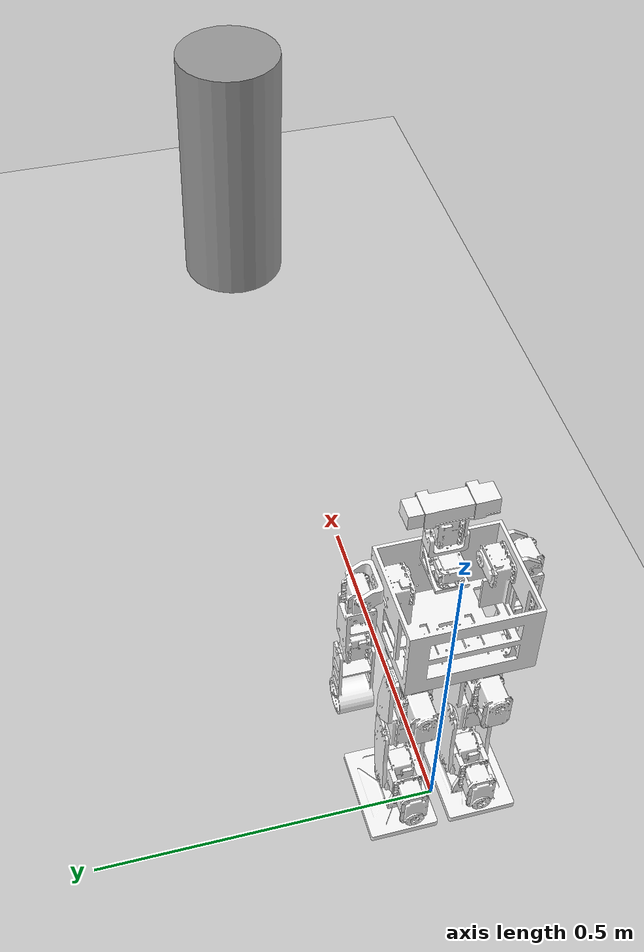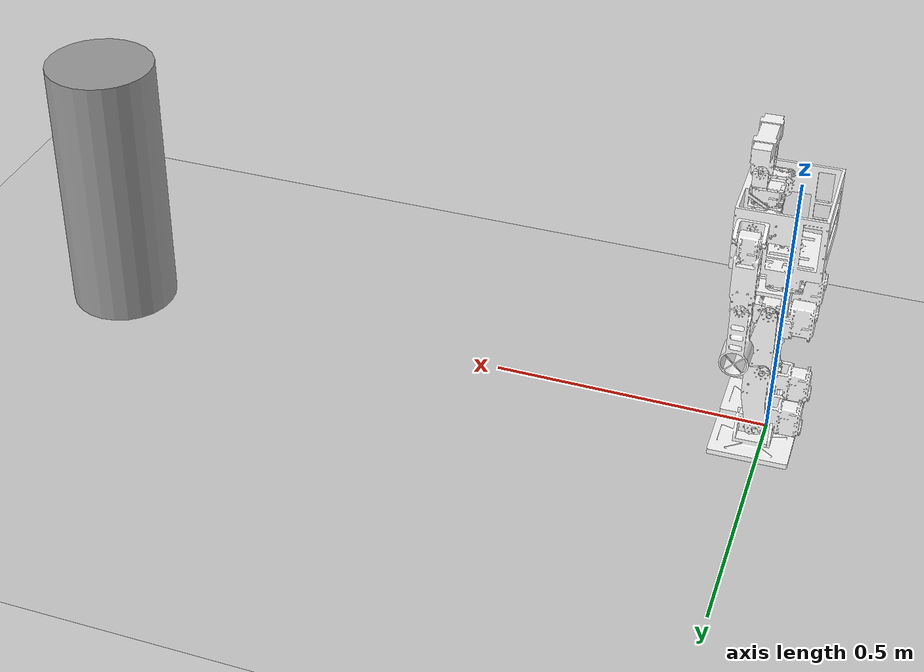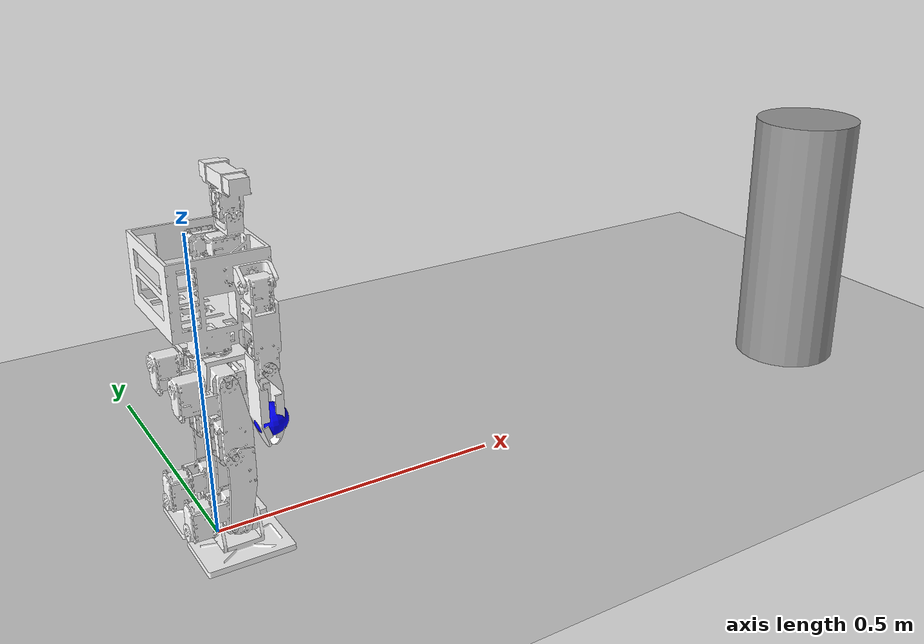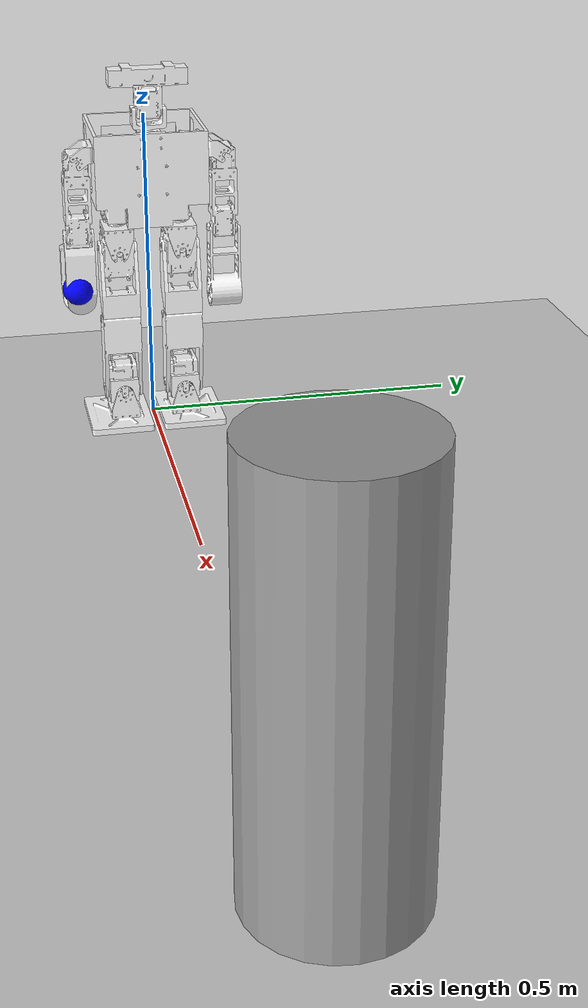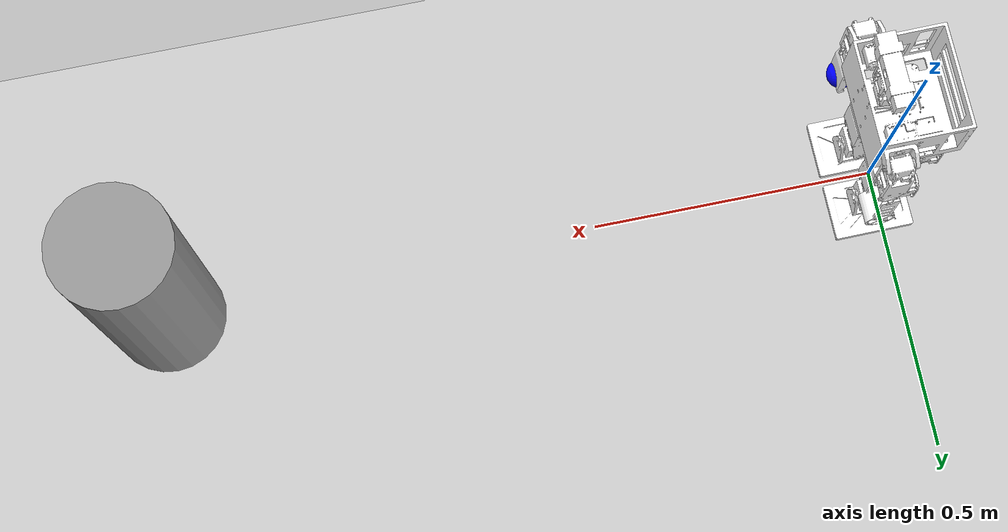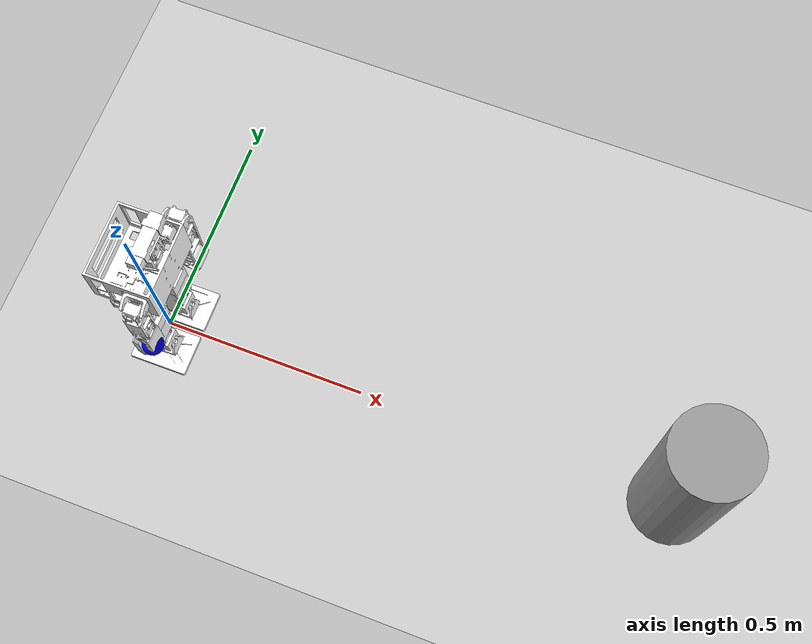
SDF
<sdf version="1.7">
 <world name="src_whole_world">
  <physics name="default_physics" default="0" type="ode">
   <max_step_size>0.001</max_step_size>
   <real_time_factor>1</real_time_factor>
   <real_time_update_rate>1000</real_time_update_rate>
   <ode>
    <solver>
     <type>quick</type>
     <iters>100</iters>
     <sor>1</sor>
     <use_dynamic_moi_rescaling>0</use_dynamic_moi_rescaling>
    </solver>
    <constraints>
     <cfm>0</cfm>
     <erp>0.2</erp>
     <contact_max_correcting_vel>100</contact_max_correcting_vel>
     <contact_surface_layer>0.001</contact_surface_layer>
    </constraints>
    <friction><mu>0.5</mu><mu2>0.1</mu2><fdir1>1 0 0</fdir1></friction>
   </ode>
  </physics>
  <model name="ground_plane">
   <static>1</static>
   <link name="link">
    <collision name="collision">
     <geometry><plane><normal>0 0 1</normal><size>100 100</size></plane></geometry>
     <surface>
      <contact><collide_bitmask>65535</collide_bitmask></contact>
      <friction><ode><mu>100</mu><mu2>50</mu2></ode></friction>
     </surface>
    </collision>
    <visual name="visual">
     <cast_shadows>0</cast_shadows>
     <geometry><plane><normal>0 0 1</normal><size>100 100</size></plane></geometry>
     <material>
      <script><uri>file://media/materials/scripts/gazebo.material</uri><name>Gazebo/Grey</name></script>
     </material>
    </visual>
   </link>
  </model>
  <light name="sun" type="directional">
   <pose>0 0 10 0 -0 0</pose>
   <diffuse>0.8 0.8 0.8 1</diffuse>
   <specular>0.2 0.2 0.2 1</specular>
   <attenuation>
    <range>1000</range>
    <constant>0.9</constant>
    <linear>0.01</linear>
    <quadratic>0.001</quadratic>
   </attenuation>
   <direction>-0.5 0.1 -0.9</direction>
   <spot><inner_angle>0</inner_angle><outer_angle>0</outer_angle><falloff>0</falloff></spot>
  </light>
  <model name="src_whole">
   <link name="base_link">
    <inertial>
     <pose>-0.00166 -4e-06 -0.004178 0 -0 0</pose>
     <mass>0.75139</mass>
     <inertia>
      <ixx>0.0010428</ixx>
      <ixy>-5.7481e-07</ixy>
      <ixz>1.2257e-05</ixz>
      <iyy>0.00092792</iyy>
      <iyz>1.0592e-07</iyz>
      <izz>0.0012549</izz>
     </inertia>
    </inertial>
    <collision name="base_link_collision">
     <geometry><mesh><scale>1 1 1</scale><uri>model://src_whole/meshes/base_link.STL</uri></mesh></geometry>
    </collision>
    <visual name="base_link_visual">
     <geometry><mesh><scale>1 1 1</scale><uri>model://src_whole/meshes/base_link.STL</uri></mesh></geometry>
     <material>
      <ambient>0 0 0 1</ambient>
      <diffuse>1 1 1 1</diffuse>
      <emissive>0 0 0 1</emissive>
      <specular>0 0 0 0</specular>
     </material>
    </visual>
    <sensor name="IMU" type="imu">
     <pose relative_to="base_link">-0 -0 0 0 -0 0</pose>
     <imu>
      <angular_velocity>
       <x><noise type="none"/></x>
       <y><noise type="none"/></y>
       <z><noise type="none"/></z>
      </angular_velocity>
      <linear_acceleration>
       <x><noise type="none"/></x>
       <y><noise type="none"/></y>
       <z><noise type="none"/></z>
      </linear_acceleration>
     </imu>
     <always_on>1</always_on>
     <update_rate>1000</update_rate>
     <visualize>1</visualize>
    </sensor>
    <sensor name="camera1" type="camera">
     <pose relative_to="base_link">-0 -0 0.1 0 -0 0</pose>
     <update_rate>30</update_rate>
     <camera name="head">
      <horizontal_fov>1.39626</horizontal_fov>
      <image><width>1920</width><height>1080</height><format>R8G8B8</format></image>
      <clip><near>0.02</near><far>300</far></clip>
      <noise><type>gaussian</type><mean>0</mean><stddev>0.007</stddev></noise>
     </camera>
     <plugin name="camera_controller" filename="libgazebo_ros_camera.so">
      <alwaysOn>1</alwaysOn>
      <updateRate>0.0</updateRate>
      <cameraName>kubot_cam</cameraName>
      <imageTopicName>image_raw</imageTopicName>
      <cameraInfoTopicName>camera_info</cameraInfoTopicName>
      <frameName>camera_link</frameName>
      <hackBaseline>0.07</hackBaseline>
      <distortionK1>0.0</distortionK1>
      <distortionK2>0.0</distortionK2>
      <distortionK3>0.0</distortionK3>
      <distortionT1>0.0</distortionT1>
      <distortionT2>0.0</distortionT2>
     </plugin>
    </sensor>
   </link>
   <joint name="LP" type="revolute">
    <pose relative_to="base_link">-0.008588 0.050058 -0.11568 0 -0 0</pose>
    <parent>base_link</parent>
    <child>LP_Link</child>
    <axis>
     <xyz>0 0 1</xyz>
     <limit><effort>-1</effort><velocity>-1</velocity><lower>-1e+16</lower><upper>1e+16</upper></limit>
     <dynamics><spring_reference>0</spring_reference><spring_stiffness>0</spring_stiffness></dynamics>
    </axis>
   </joint>
   <link name="LP_Link">
    <pose relative_to="LP">0 0 0 0 -0 0</pose>
    <inertial>
     <pose>0.003884 -0 0.027759 0 -0 0</pose>
     <mass>0.032185</mass>
     <inertia>
      <ixx>8.1509e-06</ixx>
      <ixy>-3.4128e-22</ixy>
      <ixz>2.5914e-09</ixz>
      <iyy>6.7466e-06</iyy>
      <iyz>2.4212e-11</iyz>
      <izz>9.2429e-06</izz>
     </inertia>
    </inertial>
    <collision name="LP_Link_collision">
     <geometry><mesh><scale>1 1 1</scale><uri>model://src_whole/meshes/LP_Link.STL</uri></mesh></geometry>
    </collision>
    <visual name="LP_Link_visual">
     <geometry><mesh><scale>1 1 1</scale><uri>model://src_whole/meshes/LP_Link.STL</uri></mesh></geometry>
     <material>
      <ambient>0 0 0 1</ambient>
      <diffuse>1 1 1 1</diffuse>
      <emissive>0 0 0 1</emissive>
      <specular>0 0 0 0</specular>
     </material>
    </visual>
   </link>
   <joint name="LPm" type="revolute">
    <pose relative_to="LP_Link">0 0 0 0 -0 0</pose>
    <parent>LP_Link</parent>
    <child>LPm_Link</child>
    <axis>
     <xyz>1 0 0</xyz>
     <limit><effort>-1</effort><velocity>-1</velocity><lower>-1e+16</lower><upper>1e+16</upper></limit>
     <dynamics><spring_reference>0</spring_reference><spring_stiffness>0</spring_stiffness></dynamics>
    </axis>
   </joint>
   <link name="LPm_Link">
    <pose relative_to="LPm">0 0 0 0 -0 0</pose>
    <inertial>
     <pose>-0.019927 2.6e-05 -0.014808 0 -0 0</pose>
     <mass>0.186247</mass>
     <inertia>
      <ixx>7.32062e-05</ixx>
      <ixy>2.13049e-09</ixy>
      <ixz>-8.42502e-07</ixz>
      <iyy>6.58557e-05</iyy>
      <iyz>3.60642e-07</iyz>
      <izz>4.46475e-05</izz>
     </inertia>
    </inertial>
    <collision name="LPm_Link_collision">
     <geometry><mesh><scale>1 1 1</scale><uri>model://src_whole/meshes/LPm_Link.STL</uri></mesh></geometry>
    </collision>
    <visual name="LPm_Link_visual">
     <geometry><mesh><scale>1 1 1</scale><uri>model://src_whole/meshes/LPm_Link.STL</uri></mesh></geometry>
     <material>
      <ambient>0 0 0 1</ambient>
      <diffuse>1 1 1 1</diffuse>
      <emissive>0 0 0 1</emissive>
      <specular>0 0 0 0</specular>
     </material>
    </visual>
   </link>
   <joint name="LPd" type="revolute">
    <pose relative_to="LPm_Link">0 0 0 0 -0 0</pose>
    <parent>LPm_Link</parent>
    <child>LPd_Link</child>
    <axis>
     <xyz>0 1 0</xyz>
     <limit><effort>-1</effort><velocity>-1</velocity><lower>-1e+16</lower><upper>1e+16</upper></limit>
     <dynamics><spring_reference>0</spring_reference><spring_stiffness>0</spring_stiffness></dynamics>
    </axis>
   </joint>
   <link name="LPd_Link">
    <pose relative_to="LPd">0 0 0 0 -0 0</pose>
    <inertial>
     <pose>0.005229 -3.2e-05 -0.087344 0 -0 0</pose>
     <mass>0.155158</mass>
     <inertia>
      <ixx>8.67547e-05</ixx>
      <ixy>-2.14541e-09</ixy>
      <ixz>6.57999e-06</ixz>
      <iyy>7.92367e-05</iyy>
      <iyz>3.60637e-07</iyz>
      <izz>3.77122e-05</izz>
     </inertia>
    </inertial>
    <collision name="LPd_Link_collision">
     <geometry><mesh><scale>1 1 1</scale><uri>model://src_whole/meshes/LPd_Link.STL</uri></mesh></geometry>
    </collision>
    <visual name="LPd_Link_visual">
     <geometry><mesh><scale>1 1 1</scale><uri>model://src_whole/meshes/LPd_Link.STL</uri></mesh></geometry>
     <material>
      <ambient>0 0 0 1</ambient>
      <diffuse>1 1 1 1</diffuse>
      <emissive>0 0 0 1</emissive>
      <specular>0 0 0 0</specular>
     </material>
    </visual>
   </link>
   <joint name="LK" type="revolute">
    <pose relative_to="LPd_Link">0.0008 0 -0.12 0 -0 0</pose>
    <parent>LPd_Link</parent>
    <child>LK_Link</child>
    <axis>
     <xyz>0 1 0</xyz>
     <limit><effort>-1</effort><velocity>-1</velocity><lower>-1e+16</lower><upper>1e+16</upper></limit>
     <dynamics><spring_reference>0</spring_reference><spring_stiffness>0</spring_stiffness></dynamics>
    </axis>
   </joint>
   <link name="LK_Link">
    <pose relative_to="LK">0 0 0 0 -0 0</pose>
    <inertial>
     <pose>0.011128 0 -0.046701 0 -0 0</pose>
     <mass>0.0766833</mass>
     <inertia>
      <ixx>8.13835e-05</ixx>
      <ixy>-5.37539e-13</ixy>
      <ixz>-6.82632e-06</ixz>
      <iyy>8.60267e-05</iyy>
      <iyz>-1.57628e-12</iyz>
      <izz>1.26229e-05</izz>
     </inertia>
    </inertial>
    <collision name="LK_Link_collision">
     <geometry><mesh><scale>1 1 1</scale><uri>model://src_whole/meshes/LK_Link.STL</uri></mesh></geometry>
    </collision>
    <visual name="LK_Link_visual">
     <geometry><mesh><scale>1 1 1</scale><uri>model://src_whole/meshes/LK_Link.STL</uri></mesh></geometry>
     <material>
      <ambient>0 0 0 1</ambient>
      <diffuse>1 1 1 1</diffuse>
      <emissive>0 0 0 1</emissive>
      <specular>0 0 0 0</specular>
     </material>
    </visual>
   </link>
   <joint name="LAP" type="revolute">
    <pose relative_to="LK_Link">-0.000796 0 -0.12 0 -0 0</pose>
    <parent>LK_Link</parent>
    <child>LAP_Link</child>
    <axis>
     <xyz>0 1 0</xyz>
     <limit><effort>-1</effort><velocity>-1</velocity><lower>-1e+16</lower><upper>1e+16</upper></limit>
     <dynamics><spring_reference>0</spring_reference><spring_stiffness>0</spring_stiffness></dynamics>
    </axis>
   </joint>
   <link name="LAP_Link">
    <pose relative_to="LAP">0 0 0 0 -0 0</pose>
    <inertial>
     <pose>-0.019927 -3.5e-05 0.014808 0 -0 0</pose>
     <mass>0.186247</mass>
     <inertia>
      <ixx>7.32062e-05</ixx>
      <ixy>-2.13055e-09</ixy>
      <ixz>8.42502e-07</ixz>
      <iyy>6.58557e-05</iyy>
      <iyz>3.60642e-07</iyz>
      <izz>4.46475e-05</izz>
     </inertia>
    </inertial>
    <collision name="LAP_Link_collision">
     <geometry><mesh><scale>1 1 1</scale><uri>model://src_whole/meshes/LAP_Link.STL</uri></mesh></geometry>
    </collision>
    <visual name="LAP_Link_visual">
     <geometry><mesh><scale>1 1 1</scale><uri>model://src_whole/meshes/LAP_Link.STL</uri></mesh></geometry>
     <material>
      <ambient>0 0 0 1</ambient>
      <diffuse>1 1 1 1</diffuse>
      <emissive>0 0 0 1</emissive>
      <specular>0 0 0 0</specular>
     </material>
    </visual>
   </link>
   <joint name="LAR" type="revolute">
    <pose relative_to="LAP_Link">0 0 0 0 -0 0</pose>
    <parent>LAP_Link</parent>
    <child>LAR_Link</child>
    <axis>
     <xyz>1 0 0</xyz>
     <limit><effort>-1</effort><velocity>-1</velocity><lower>-1e+16</lower><upper>1e+16</upper></limit>
     <dynamics><spring_reference>0</spring_reference><spring_stiffness>0</spring_stiffness></dynamics>
    </axis>
   </joint>
   <link name="LAR_Link">
    <pose relative_to="LAR">0 0 0 0 -0 0</pose>
    <inertial>
     <pose>-0.0266 0 -0.019713 0 -0 0</pose>
     <mass>0.00840381</mass>
     <inertia>
      <ixx>2.59254e-06</ixx>
      <ixy>-2.03595e-22</ixy>
      <ixz>1.87535e-22</ixz>
      <iyy>1.39862e-06</iyy>
      <iyz>-1.2106e-11</iyz>
      <izz>1.22894e-06</izz>
     </inertia>
    </inertial>
    <collision name="LAR_Link_collision">
     <geometry><mesh><scale>1 1 1</scale><uri>model://src_whole/meshes/LAR_Link.STL</uri></mesh></geometry>
    </collision>
    <visual name="LAR_Link_visual">
     <geometry><mesh><scale>1 1 1</scale><uri>model://src_whole/meshes/LAR_Link.STL</uri></mesh></geometry>
     <material>
      <ambient>0 0 0 1</ambient>
      <diffuse>1 1 1 1</diffuse>
      <emissive>0 0 0 1</emissive>
      <specular>0 0 0 0</specular>
     </material>
    </visual>
   </link>
   <joint name="LS" type="fixed">
    <pose relative_to="LAR_Link">0.000796 0 -0.05 0 -0 0</pose>
    <parent>LAR_Link</parent>
    <child>LS_Link</child>
    <axis>
     <xyz>0 0 1</xyz>
     <limit><effort>-1</effort><velocity>-1</velocity><lower>-1e+16</lower><upper>1e+16</upper></limit>
     <dynamics><spring_reference>0</spring_reference><spring_stiffness>0</spring_stiffness></dynamics>
    </axis>
   </joint>
   <link name="LS_Link">
    <pose relative_to="LS">0 0 0 0 -0 0</pose>
    <inertial>
     <pose>0.004719 0.00669 0.007071 0 -0 0</pose>
     <mass>0.145083</mass>
     <inertia>
      <ixx>0.000115542</ixx>
      <ixy>3.6327e-13</ixy>
      <ixz>1.46992e-12</ixz>
      <iyy>0.000210297</iyy>
      <iyz>1.32916e-06</iyz>
      <izz>0.000318707</izz>
     </inertia>
    </inertial>
    <collision name="LS_Link_collision">
     <geometry><mesh><scale>1 1 1</scale><uri>model://src_whole/meshes/LS_Link.STL</uri></mesh></geometry>
     <surface><friction><ode><mu>0.2</mu><mu2>0.1</mu2></ode></friction></surface>
     <surface>
      <contact><ode><kp>1e+07</kp><kd>10000</kd><max_vel>0.1</max_vel><min_depth>0.001</min_depth></ode></contact>
     </surface>
    </collision>
    <visual name="LS_Link_visual">
     <geometry><mesh><scale>1 1 1</scale><uri>model://src_whole/meshes/LS_Link.STL</uri></mesh></geometry>
     <material>
      <ambient>0 0 0 1</ambient>
      <diffuse>1 1 1 1</diffuse>
      <emissive>0 0 0 1</emissive>
      <specular>0 0 0 0</specular>
     </material>
    </visual>
   </link>
   <joint name="LSHP" type="revolute">
    <pose relative_to="base_link">0.033212 0.088307 0.054616 0 -0 0</pose>
    <parent>base_link</parent>
    <child>LSHP_Link</child>
    <axis>
     <xyz>0 1 0</xyz>
     <limit><effort>-1</effort><velocity>-1</velocity><lower>-1e+16</lower><upper>1e+16</upper></limit>
     <dynamics><spring_reference>0</spring_reference><spring_stiffness>0</spring_stiffness></dynamics>
    </axis>
   </joint>
   <link name="LSHP_Link">
    <pose relative_to="LSHP">0 0 0 0 -0 0</pose>
    <inertial>
     <pose>-0 0.010248 -0.001638 0 -0 0</pose>
     <mass>0.0144695</mass>
     <inertia>
      <ixx>2.03926e-06</ixx>
      <ixy>-6.3955e-13</ixy>
      <ixz>8.85004e-14</ixz>
      <iyy>6.57717e-06</iyy>
      <iyz>2.36867e-07</iyz>
      <izz>6.75696e-06</izz>
     </inertia>
    </inertial>
    <collision name="LSHP_Link_collision">
     <geometry><mesh><scale>1 1 1</scale><uri>model://src_whole/meshes/LSHP_Link.STL</uri></mesh></geometry>
    </collision>
    <visual name="LSHP_Link_visual">
     <geometry><mesh><scale>1 1 1</scale><uri>model://src_whole/meshes/LSHP_Link.STL</uri></mesh></geometry>
     <material>
      <ambient>0 0 0 1</ambient>
      <diffuse>1 1 1 1</diffuse>
      <emissive>0 0 0 1</emissive>
      <specular>0 0 0 0</specular>
     </material>
    </visual>
   </link>
   <joint name="LSHR" type="revolute">
    <pose relative_to="LSHP_Link">0.020275 0.025656 -0.01045 0 -0 0</pose>
    <parent>LSHP_Link</parent>
    <child>LSHR_Link</child>
    <axis>
     <xyz>1 0 0</xyz>
     <limit><effort>-1</effort><velocity>-1</velocity><lower>-1e+16</lower><upper>1e+16</upper></limit>
     <dynamics><spring_reference>0</spring_reference><spring_stiffness>0</spring_stiffness></dynamics>
    </axis>
   </joint>
   <link name="LSHR_Link">
    <pose relative_to="LSHR">0 0 0 0 -0 0</pose>
    <inertial>
     <pose>-0.02074 1e-05 -0.061219 0 -0 0</pose>
     <mass>0.123124</mass>
     <inertia>
      <ixx>4.41336e-05</ixx>
      <ixy>1.41885e-10</ixy>
      <ixz>-1.13936e-07</ixz>
      <iyy>4.14051e-05</iyy>
      <iyz>1.08534e-07</iyz>
      <izz>2.93257e-05</izz>
     </inertia>
    </inertial>
    <collision name="LSHR_Link_collision">
     <geometry><mesh><scale>1 1 1</scale><uri>model://src_whole/meshes/LSHR_Link.STL</uri></mesh></geometry>
    </collision>
    <visual name="LSHR_Link_visual">
     <geometry><mesh><scale>1 1 1</scale><uri>model://src_whole/meshes/LSHR_Link.STL</uri></mesh></geometry>
     <material>
      <ambient>0 0 0 1</ambient>
      <diffuse>1 1 1 1</diffuse>
      <emissive>0 0 0 1</emissive>
      <specular>0 0 0 0</specular>
     </material>
    </visual>
   </link>
   <joint name="LE" type="revolute">
    <pose relative_to="LSHR_Link">-0.02075 0.02075 -0.1231 0 -0 0</pose>
    <parent>LSHR_Link</parent>
    <child>LE_Link</child>
    <axis>
     <xyz>0 1 0</xyz>
     <limit><effort>-1</effort><velocity>-1</velocity><lower>-1e+16</lower><upper>1e+16</upper></limit>
     <dynamics><spring_reference>0</spring_reference><spring_stiffness>0</spring_stiffness></dynamics>
    </axis>
   </joint>
   <link name="LE_Link">
    <pose relative_to="LE">0 0 0 0 -0 0</pose>
    <inertial>
     <pose>0 -0.020275 -0.07859 0 -0 0</pose>
     <mass>0.0479318</mass>
     <inertia>
      <ixx>7.80085e-05</ixx>
      <ixy>7.08556e-20</ixy>
      <ixz>1.5237e-19</ixz>
      <iyy>7.27678e-05</iyy>
      <iyz>1.80118e-12</iyz>
      <izz>2.17936e-05</izz>
     </inertia>
    </inertial>
    <collision name="LE_Link_collision">
     <geometry><mesh><scale>1 1 1</scale><uri>model://src_whole/meshes/LE_Link.STL</uri></mesh></geometry>
    </collision>
    <visual name="LE_Link_visual">
     <geometry><mesh><scale>1 1 1</scale><uri>model://src_whole/meshes/LE_Link.STL</uri></mesh></geometry>
     <material>
      <ambient>0 0 0 1</ambient>
      <diffuse>1 1 1 1</diffuse>
      <emissive>0 0 0 1</emissive>
      <specular>0 0 0 0</specular>
     </material>
    </visual>
   </link>
   <joint name="NY" type="revolute">
    <pose relative_to="base_link">0.038812 5.7e-05 0.086566 0 -0 0</pose>
    <parent>base_link</parent>
    <child>NY_Link</child>
    <axis>
     <xyz>0 0 1</xyz>
     <limit><effort>-1</effort><velocity>-1</velocity><lower>-1e+16</lower><upper>1e+16</upper></limit>
     <dynamics><spring_reference>0</spring_reference><spring_stiffness>0</spring_stiffness></dynamics>
    </axis>
   </joint>
   <link name="NY_Link">
    <pose relative_to="NY">0 0 0 0 -0 0</pose>
    <inertial>
     <pose>-0.008461 -1e-06 -0.011176 0 -0 0</pose>
     <mass>0.0588745</mass>
     <inertia>
      <ixx>1.41764e-05</ixx>
      <ixy>1.41875e-09</ixy>
      <ixz>-1.82756e-07</ixz>
      <iyy>1.41937e-05</iyy>
      <iyz>2.61312e-12</iyz>
      <izz>1.67049e-05</izz>
     </inertia>
    </inertial>
    <collision name="NY_Link_collision">
     <geometry><mesh><scale>1 1 1</scale><uri>model://src_whole/meshes/NY_Link.STL</uri></mesh></geometry>
    </collision>
    <visual name="NY_Link_visual">
     <geometry><mesh><scale>1 1 1</scale><uri>model://src_whole/meshes/NY_Link.STL</uri></mesh></geometry>
     <material>
      <ambient>0 0 0 1</ambient>
      <diffuse>1 1 1 1</diffuse>
      <emissive>0 0 0 1</emissive>
      <specular>0 0 0 0</specular>
     </material>
    </visual>
   </link>
   <joint name="NP" type="revolute">
    <pose relative_to="NY_Link">0 -0.020275 0.0295 0 -0 0</pose>
    <parent>NY_Link</parent>
    <child>NP_Link</child>
    <axis>
     <xyz>0 1 0</xyz>
     <limit><effort>-1</effort><velocity>-1</velocity><lower>-1e+16</lower><upper>1e+16</upper></limit>
     <dynamics><spring_reference>0</spring_reference><spring_stiffness>0</spring_stiffness></dynamics>
    </axis>
   </joint>
   <link name="NP_Link">
    <pose relative_to="NP">0 0 0 0 -0 0</pose>
    <inertial>
     <pose>-0.000876 0.019782 0.038502 0 -0 0</pose>
     <mass>0.140816</mass>
     <inertia>
      <ixx>0.0001309</ixx>
      <ixy>-3.21261e-07</ixy>
      <ixz>1.07462e-07</ixz>
      <iyy>2.57793e-05</iyy>
      <iyz>-5.11712e-07</iyz>
      <izz>0.000128105</izz>
     </inertia>
    </inertial>
    <collision name="NP_Link_collision">
     <geometry><mesh><scale>1 1 1</scale><uri>model://src_whole/meshes/NP_Link.STL</uri></mesh></geometry>
    </collision>
    <visual name="NP_Link_visual">
     <geometry><mesh><scale>1 1 1</scale><uri>model://src_whole/meshes/NP_Link.STL</uri></mesh></geometry>
     <material>
      <ambient>0 0 0 1</ambient>
      <diffuse>1 1 1 1</diffuse>
      <emissive>0 0 0 1</emissive>
      <specular>0 0 0 0</specular>
     </material>
    </visual>
   </link>
   <joint name="RP" type="revolute">
    <pose relative_to="base_link">-0.008588 -0.049942 -0.11568 0 -0 0</pose>
    <parent>base_link</parent>
    <child>RP_link</child>
    <axis>
     <xyz>0 0 1</xyz>
     <limit><effort>-1</effort><velocity>-1</velocity><lower>-1e+16</lower><upper>1e+16</upper></limit>
     <dynamics><spring_reference>0</spring_reference><spring_stiffness>0</spring_stiffness></dynamics>
    </axis>
   </joint>
   <link name="RP_link">
    <pose relative_to="RP">0 0 0 0 -0 0</pose>
    <inertial>
     <pose>0.003884 -0 0.027759 0 -0 0</pose>
     <mass>0.032185</mass>
     <inertia>
      <ixx>8.1509e-06</ixx>
      <ixy>2.6555e-22</ixy>
      <ixz>2.5914e-09</ixz>
      <iyy>6.7466e-06</iyy>
      <iyz>2.4212e-11</iyz>
      <izz>9.2429e-06</izz>
     </inertia>
    </inertial>
    <collision name="RP_link_collision">
     <geometry><mesh><scale>1 1 1</scale><uri>model://src_whole/meshes/RP_link.STL</uri></mesh></geometry>
    </collision>
    <visual name="RP_link_visual">
     <geometry><mesh><scale>1 1 1</scale><uri>model://src_whole/meshes/RP_link.STL</uri></mesh></geometry>
     <material>
      <ambient>0 0 0 1</ambient>
      <diffuse>1 1 1 1</diffuse>
      <emissive>0 0 0 1</emissive>
      <specular>0 0 0 0</specular>
     </material>
    </visual>
   </link>
   <joint name="RPm" type="revolute">
    <pose relative_to="RP_link">0 0 0 0 -0 0</pose>
    <parent>RP_link</parent>
    <child>RPm_Link</child>
    <axis>
     <xyz>1 0 0</xyz>
     <limit><effort>-1</effort><velocity>-1</velocity><lower>-1e+16</lower><upper>1e+16</upper></limit>
     <dynamics><spring_reference>0</spring_reference><spring_stiffness>0</spring_stiffness></dynamics>
    </axis>
   </joint>
   <link name="RPm_Link">
    <pose relative_to="RPm">0 0 0 0 -0 0</pose>
    <inertial>
     <pose>-0.019927 2.6e-05 -0.014808 0 -0 0</pose>
     <mass>0.18625</mass>
     <inertia>
      <ixx>7.3206e-05</ixx>
      <ixy>2.1305e-09</ixy>
      <ixz>-8.425e-07</ixz>
      <iyy>6.5856e-05</iyy>
      <iyz>3.6064e-07</iyz>
      <izz>4.4648e-05</izz>
     </inertia>
    </inertial>
    <collision name="RPm_Link_collision">
     <geometry><mesh><scale>1 1 1</scale><uri>model://src_whole/meshes/RPm_Link.STL</uri></mesh></geometry>
    </collision>
    <visual name="RPm_Link_visual">
     <geometry><mesh><scale>1 1 1</scale><uri>model://src_whole/meshes/RPm_Link.STL</uri></mesh></geometry>
     <material>
      <ambient>0 0 0 1</ambient>
      <diffuse>1 1 1 1</diffuse>
      <emissive>0 0 0 1</emissive>
      <specular>0 0 0 0</specular>
     </material>
    </visual>
   </link>
   <joint name="RPd" type="revolute">
    <pose relative_to="RPm_Link">0 0 0 0 -0 0</pose>
    <parent>RPm_Link</parent>
    <child>RPd_Link</child>
    <axis>
     <xyz>0 1 0</xyz>
     <limit><effort>-1</effort><velocity>-1</velocity><lower>-1e+16</lower><upper>1e+16</upper></limit>
     <dynamics><spring_reference>0</spring_reference><spring_stiffness>0</spring_stiffness></dynamics>
    </axis>
   </joint>
   <link name="RPd_Link">
    <pose relative_to="RPd">0 0 0 0 -0 0</pose>
    <inertial>
     <pose>0.005229 -3.2e-05 -0.087344 0 -0 0</pose>
     <mass>0.15516</mass>
     <inertia>
      <ixx>8.6755e-05</ixx>
      <ixy>-2.1454e-09</ixy>
      <ixz>6.58e-06</ixz>
      <iyy>7.9237e-05</iyy>
      <iyz>3.6064e-07</iyz>
      <izz>3.7712e-05</izz>
     </inertia>
    </inertial>
    <collision name="RPd_Link_collision">
     <geometry><mesh><scale>1 1 1</scale><uri>model://src_whole/meshes/RPd_Link.STL</uri></mesh></geometry>
    </collision>
    <visual name="RPd_Link_visual">
     <geometry><mesh><scale>1 1 1</scale><uri>model://src_whole/meshes/RPd_Link.STL</uri></mesh></geometry>
     <material>
      <ambient>0 0 0 1</ambient>
      <diffuse>1 1 1 1</diffuse>
      <emissive>0 0 0 1</emissive>
      <specular>0 0 0 0</specular>
     </material>
    </visual>
   </link>
   <joint name="RK" type="revolute">
    <pose relative_to="RPd_Link">0.0008 0 -0.12 0 -0 0</pose>
    <parent>RPd_Link</parent>
    <child>RK_Link</child>
    <axis>
     <xyz>0 1 0</xyz>
     <limit><effort>-1</effort><velocity>-1</velocity><lower>-1e+16</lower><upper>1e+16</upper></limit>
     <dynamics><spring_reference>0</spring_reference><spring_stiffness>0</spring_stiffness></dynamics>
    </axis>
   </joint>
   <link name="RK_Link">
    <pose relative_to="RK">0 0 0 0 -0 0</pose>
    <inertial>
     <pose>0.011128 0 -0.046701 0 -0 0</pose>
     <mass>0.076683</mass>
     <inertia>
      <ixx>8.1384e-05</ixx>
      <ixy>-5.3754e-13</ixy>
      <ixz>-6.8263e-06</ixz>
      <iyy>8.6027e-05</iyy>
      <iyz>-1.5763e-12</iyz>
      <izz>1.2623e-05</izz>
     </inertia>
    </inertial>
    <collision name="RK_Link_collision">
     <geometry><mesh><scale>1 1 1</scale><uri>model://src_whole/meshes/RK_Link.STL</uri></mesh></geometry>
    </collision>
    <visual name="RK_Link_visual">
     <geometry><mesh><scale>1 1 1</scale><uri>model://src_whole/meshes/RK_Link.STL</uri></mesh></geometry>
     <material>
      <ambient>0 0 0 1</ambient>
      <diffuse>1 1 1 1</diffuse>
      <emissive>0 0 0 1</emissive>
      <specular>0 0 0 0</specular>
     </material>
    </visual>
   </link>
   <joint name="RAP" type="revolute">
    <pose relative_to="RK_Link">-0.000796 0 -0.12 0 -0 0</pose>
    <parent>RK_Link</parent>
    <child>RAP_Link</child>
    <axis>
     <xyz>0 1 0</xyz>
     <limit><effort>-1</effort><velocity>-1</velocity><lower>-1e+16</lower><upper>1e+16</upper></limit>
     <dynamics><spring_reference>0</spring_reference><spring_stiffness>0</spring_stiffness></dynamics>
    </axis>
   </joint>
   <link name="RAP_Link">
    <pose relative_to="RAP">0 0 0 0 -0 0</pose>
    <inertial>
     <pose>-0.019927 -3.5e-05 0.014808 0 -0 0</pose>
     <mass>0.18625</mass>
     <inertia>
      <ixx>7.3206e-05</ixx>
      <ixy>-2.1306e-09</ixy>
      <ixz>8.425e-07</ixz>
      <iyy>6.5856e-05</iyy>
      <iyz>3.6064e-07</iyz>
      <izz>4.4648e-05</izz>
     </inertia>
    </inertial>
    <collision name="RAP_Link_collision">
     <geometry><mesh><scale>1 1 1</scale><uri>model://src_whole/meshes/RAP_Link.STL</uri></mesh></geometry>
    </collision>
    <visual name="RAP_Link_visual">
     <geometry><mesh><scale>1 1 1</scale><uri>model://src_whole/meshes/RAP_Link.STL</uri></mesh></geometry>
     <material>
      <ambient>0 0 0 1</ambient>
      <diffuse>1 1 1 1</diffuse>
      <emissive>0 0 0 1</emissive>
      <specular>0 0 0 0</specular>
     </material>
    </visual>
   </link>
   <joint name="RAR" type="revolute">
    <pose relative_to="RAP_Link">0 0 0 0 -0 0</pose>
    <parent>RAP_Link</parent>
    <child>RAR_Link</child>
    <axis>
     <xyz>1 0 0</xyz>
     <limit><effort>-1</effort><velocity>-1</velocity><lower>-1e+16</lower><upper>1e+16</upper></limit>
     <dynamics><spring_reference>0</spring_reference><spring_stiffness>0</spring_stiffness></dynamics>
    </axis>
   </joint>
   <link name="RAR_Link">
    <pose relative_to="RAR">0 0 0 0 -0 0</pose>
    <inertial>
     <pose>-0.0266 -0 -0.019713 0 -0 0</pose>
     <mass>0.0084038</mass>
     <inertia>
      <ixx>2.5925e-06</ixx>
      <ixy>-1.2568e-22</ixy>
      <ixz>-1.2942e-22</ixz>
      <iyy>1.3986e-06</iyy>
      <iyz>1.2106e-11</iyz>
      <izz>1.2289e-06</izz>
     </inertia>
    </inertial>
    <collision name="RAR_Link_collision">
     <geometry><mesh><scale>1 1 1</scale><uri>model://src_whole/meshes/RAR_Link.STL</uri></mesh></geometry>
    </collision>
    <visual name="RAR_Link_visual">
     <geometry><mesh><scale>1 1 1</scale><uri>model://src_whole/meshes/RAR_Link.STL</uri></mesh></geometry>
     <material>
      <ambient>0 0 0 1</ambient>
      <diffuse>1 1 1 1</diffuse>
      <emissive>0 0 0 1</emissive>
      <specular>0 0 0 0</specular>
     </material>
    </visual>
   </link>
   <joint name="RS" type="fixed">
    <pose relative_to="RAR_Link">0.000796 0 -0.05 0 -0 0</pose>
    <parent>RAR_Link</parent>
    <child>RS_Link</child>
    <axis>
     <xyz>0 0 1</xyz>
     <limit><effort>-1</effort><velocity>-1</velocity><lower>-1e+16</lower><upper>1e+16</upper></limit>
     <dynamics><spring_reference>0</spring_reference><spring_stiffness>0</spring_stiffness></dynamics>
    </axis>
   </joint>
   <link name="RS_Link">
    <pose relative_to="RS">0 0 0 0 -0 0</pose>
    <inertial>
     <pose>0.004719 -0.006889 0.007071 0 -0 0</pose>
     <mass>0.14508</mass>
     <inertia>
      <ixx>0.00011554</ixx>
      <ixy>3.6327e-13</ixy>
      <ixz>-1.4699e-12</ixz>
      <iyy>0.0002103</iyy>
      <iyz>-1.3291e-06</iyz>
      <izz>0.00031871</izz>
     </inertia>
    </inertial>
    <collision name="RS_Link_collision">
     <geometry><mesh><scale>1 1 1</scale><uri>model://src_whole/meshes/RS_Link.STL</uri></mesh></geometry>
     <surface><friction><ode><mu>0.2</mu><mu2>0.1</mu2></ode></friction></surface>
     <surface>
      <contact><ode><kp>1e+07</kp><kd>10000</kd><max_vel>0.1</max_vel><min_depth>0.001</min_depth></ode></contact>
     </surface>
    </collision>
    <visual name="RS_Link_visual">
     <geometry><mesh><scale>1 1 1</scale><uri>model://src_whole/meshes/RS_Link.STL</uri></mesh></geometry>
     <material>
      <ambient>0 0 0 1</ambient>
      <diffuse>1 1 1 1</diffuse>
      <emissive>0 0 0 1</emissive>
      <specular>0 0 0 0</specular>
     </material>
    </visual>
   </link>
   <joint name="RSHP" type="revolute">
    <pose relative_to="base_link">0.033212 -0.088193 0.054616 0 -0 0</pose>
    <parent>base_link</parent>
    <child>RSHP_Link</child>
    <axis>
     <xyz>0 1 0</xyz>
     <limit><effort>-1</effort><velocity>-1</velocity><lower>-1e+16</lower><upper>1e+16</upper></limit>
     <dynamics><spring_reference>0</spring_reference><spring_stiffness>0</spring_stiffness></dynamics>
    </axis>
   </joint>
   <link name="RSHP_Link">
    <pose relative_to="RSHP">0 0 0 0 -0 0</pose>
    <inertial>
     <pose>0 -0.010248 -0.001638 0 -0 0</pose>
     <mass>0.0144695</mass>
     <inertia>
      <ixx>2.03926e-06</ixx>
      <ixy>-6.3955e-13</ixy>
      <ixz>-8.85004e-14</ixz>
      <iyy>6.57717e-06</iyy>
      <iyz>-2.36867e-07</iyz>
      <izz>6.75696e-06</izz>
     </inertia>
    </inertial>
    <collision name="RSHP_Link_collision">
     <geometry><mesh><scale>1 1 1</scale><uri>model://src_whole/meshes/RSHP_Link.STL</uri></mesh></geometry>
    </collision>
    <visual name="RSHP_Link_visual">
     <geometry><mesh><scale>1 1 1</scale><uri>model://src_whole/meshes/RSHP_Link.STL</uri></mesh></geometry>
     <material>
      <ambient>0 0 0 1</ambient>
      <diffuse>1 1 1 1</diffuse>
      <emissive>0 0 0 1</emissive>
      <specular>0 0 0 0</specular>
     </material>
    </visual>
   </link>
   <joint name="RSHR" type="revolute">
    <pose relative_to="RSHP_Link">0.020275 -0.025656 -0.01045 0 -0 0</pose>
    <parent>RSHP_Link</parent>
    <child>RSHR_Link</child>
    <axis>
     <xyz>1 0 0</xyz>
     <limit><effort>-1</effort><velocity>-1</velocity><lower>-1e+16</lower><upper>1e+16</upper></limit>
     <dynamics><spring_reference>0</spring_reference><spring_stiffness>0</spring_stiffness></dynamics>
    </axis>
   </joint>
   <link name="RSHR_Link">
    <pose relative_to="RSHR">0 0 0 0 -0 0</pose>
    <inertial>
     <pose>-0.023345 -0.000684 -0.079178 0 -0 0</pose>
     <mass>0.146207</mass>
     <inertia>
      <ixx>8.16862e-05</ixx>
      <ixy>4.88216e-08</ixy>
      <ixz>1.7667e-06</ixz>
      <iyy>7.43475e-05</iyy>
      <iyz>-1.52348e-06</iyz>
      <izz>3.46705e-05</izz>
     </inertia>
    </inertial>
    <collision name="RSHR_Link_collision">
     <geometry><mesh><scale>1 1 1</scale><uri>model://src_whole/meshes/RSHR_Link.STL</uri></mesh></geometry>
    </collision>
    <visual name="RSHR_Link_visual">
     <geometry><mesh><scale>1 1 1</scale><uri>model://src_whole/meshes/RSHR_Link.STL</uri></mesh></geometry>
     <material>
      <ambient>0 0 0 1</ambient>
      <diffuse>1 1 1 1</diffuse>
      <emissive>0 0 0 1</emissive>
      <specular>0 0 0 0</specular>
     </material>
    </visual>
   </link>
   <joint name="RE" type="revolute">
    <pose relative_to="RSHR_Link">-0.02075 -0.02075 -0.1231 0 -0 0</pose>
    <parent>RSHR_Link</parent>
    <child>RE_Link</child>
    <axis>
     <xyz>0 1 0</xyz>
     <limit><effort>-1</effort><velocity>-1</velocity><lower>-1e+16</lower><upper>1e+16</upper></limit>
     <dynamics><spring_reference>0</spring_reference><spring_stiffness>0</spring_stiffness></dynamics>
    </axis>
   </joint>
   <link name="RE_Link">
    <pose relative_to="RE">0 0 0 0 -0 0</pose>
    <inertial>
     <pose>0.011514 0.020275 -0.054007 0 -0 0</pose>
     <mass>0.0259695</mass>
     <inertia>
      <ixx>3.68213e-05</ixx>
      <ixy>4.73793e-20</ixy>
      <ixz>7.15914e-07</ixz>
      <iyy>3.12347e-05</iyy>
      <iyz>1.72747e-20</iyz>
      <izz>6.7595e-06</izz>
     </inertia>
    </inertial>
    <collision name="RE_Link_collision">
     <geometry><mesh><scale>1 1 1</scale><uri>model://src_whole/meshes/RE_Link.STL</uri></mesh></geometry>
    </collision>
    <visual name="RE_Link_visual">
     <geometry><mesh><scale>1 1 1</scale><uri>model://src_whole/meshes/RE_Link.STL</uri></mesh></geometry>
     <material>
      <ambient>0 0 0 1</ambient>
      <diffuse>1 1 1 1</diffuse>
      <emissive>0 0 0 1</emissive>
      <specular>0 0 0 0</specular>
     </material>
    </visual>
   </link>
   <pose>0.02593 -0.000991 0.405141 0.001827 0.010891 0.008866</pose>
   <plugin name="src_whole_plugin.cc" filename="libsrc_whole_pkgs.so"/>
  </model>
  <gravity>0 0 -9.8</gravity>
  <magnetic_field>6e-06 2.3e-05 -4.2e-05</magnetic_field>
  <atmosphere type="adiabatic"/>
  <scene><ambient>0.4 0.4 0.4 1</ambient><background>0.7 0.7 0.7 1</background><shadows>1</shadows></scene>
  <spherical_coordinates>
   <surface_model>EARTH_WGS84</surface_model>
   <latitude_deg>0</latitude_deg>
   <longitude_deg>0</longitude_deg>
   <elevation>0</elevation>
   <heading_deg>0</heading_deg>
  </spherical_coordinates>
  <model name="ball">
   <link name="link">
    <inertial>
     <mass>0.01</mass>
     <inertia>
      <ixx>6.25e-06</ixx>
      <ixy>0</ixy>
      <ixz>0</ixz>
      <iyy>6.25e-06</iyy>
      <iyz>0</iyz>
      <izz>6.25e-06</izz>
     </inertia>
    </inertial>
    <visual name="visual">
     <geometry><sphere><radius>0.025</radius></sphere></geometry>
     <material>
      <script><name>Gazebo/Grey</name><uri>file://media/materials/scripts/gazebo.material</uri></script>
      <shader type="pixel"><normal_map>__default__</normal_map></shader>
      <ambient>0 0 1 1</ambient>
      <diffuse>0.7 0.7 0.7 1</diffuse>
      <specular>0 0 1 1</specular>
      <emissive>0 0 0 1</emissive>
     </material>
    </visual>
    <collision name="collision">
     <geometry><sphere><radius>0.025</radius></sphere></geometry>
     <surface>
      <friction>
       <ode><mu>1</mu><mu2>1</mu2><fdir1>0 0 0</fdir1><slip1>0</slip1><slip2>0</slip2></ode>
       <torsional>
        <coefficient>1</coefficient>
        <patch_radius>0</patch_radius>
        <surface_radius>0</surface_radius>
        <use_patch_radius>1</use_patch_radius>
        <ode><slip>0</slip></ode>
       </torsional>
      </friction>
      <bounce><restitution_coefficient>0</restitution_coefficient><threshold>1e+06</threshold></bounce>
      <contact>
       <collide_without_contact>0</collide_without_contact>
       <collide_without_contact_bitmask>1</collide_without_contact_bitmask>
       <collide_bitmask>1</collide_bitmask>
       <ode>
        <soft_cfm>0</soft_cfm>
        <soft_erp>0.2</soft_erp>
        <kp>1e+13</kp>
        <kd>1</kd>
        <max_vel>0.01</max_vel>
        <min_depth>0</min_depth>
       </ode>
       <bullet>
        <split_impulse>1</split_impulse>
        <split_impulse_penetration_threshold>-0.01</split_impulse_penetration_threshold>
        <soft_cfm>0</soft_cfm>
        <soft_erp>0.2</soft_erp>
        <kp>1e+13</kp>
        <kd>1</kd>
       </bullet>
      </contact>
     </surface>
    </collision>
   </link>
   <static>0</static>
   <pose>0.061539 -0.118176 0.240141 1.58359 0.010348 -1.50034</pose>
  </model>
  <model name="rhfeo">
   <link name="link">
    <inertial>
     <mass>100</mass>
     <inertia><ixx>14.5833</ixx><ixy>0</ixy><ixz>0</ixz><iyy>14.5833</iyy><iyz>0</iyz><izz>12.5</izz></inertia>
    </inertial>
    <pose>-0.4 0 -0.25 0 -0 0</pose>
    <visual name="visual">
     <geometry><cylinder><radius>0.1</radius><length>0.5</length></cylinder></geometry>
     <material>
      <script><name>Gazebo/Grey</name><uri>file://media/materials/scripts/gazebo.material</uri></script>
      <shader type="pixel"><normal_map>__default__</normal_map></shader>
      <ambient>0.3 0.3 0.3 1</ambient>
      <diffuse>0.7 0.7 0.7 1</diffuse>
      <specular>0.01 0.01 0.01 1</specular>
      <emissive>0 0 0 1</emissive>
     </material>
    </visual>
    <collision name="collision">
     <geometry><cylinder><radius>0.1</radius><length>0.5</length></cylinder></geometry>
     <surface>
      <friction>
       <ode><mu>1</mu><mu2>1</mu2><fdir1>0 0 0</fdir1><slip1>0</slip1><slip2>0</slip2></ode>
       <torsional>
        <coefficient>1</coefficient>
        <patch_radius>0</patch_radius>
        <surface_radius>0</surface_radius>
        <use_patch_radius>1</use_patch_radius>
        <ode><slip>0</slip></ode>
       </torsional>
      </friction>
      <bounce><restitution_coefficient>0</restitution_coefficient><threshold>1e+06</threshold></bounce>
      <contact>
       <collide_without_contact>0</collide_without_contact>
       <collide_without_contact_bitmask>1</collide_without_contact_bitmask>
       <collide_bitmask>1</collide_bitmask>
       <ode>
        <soft_cfm>0</soft_cfm>
        <soft_erp>0.2</soft_erp>
        <kp>1e+13</kp>
        <kd>1</kd>
        <max_vel>0.01</max_vel>
        <min_depth>0</min_depth>
       </ode>
       <bullet>
        <split_impulse>1</split_impulse>
        <split_impulse_penetration_threshold>-0.01</split_impulse_penetration_threshold>
        <soft_cfm>0</soft_cfm>
        <soft_erp>0.2</soft_erp>
        <kp>1e+13</kp>
        <kd>1</kd>
       </bullet>
      </contact>
     </surface>
    </collision>
   </link>
   <static>0</static>
   <pose>1.66703 0.008327 0.5 0 -0 0</pose>
  </model>
 </world>
</sdf>
